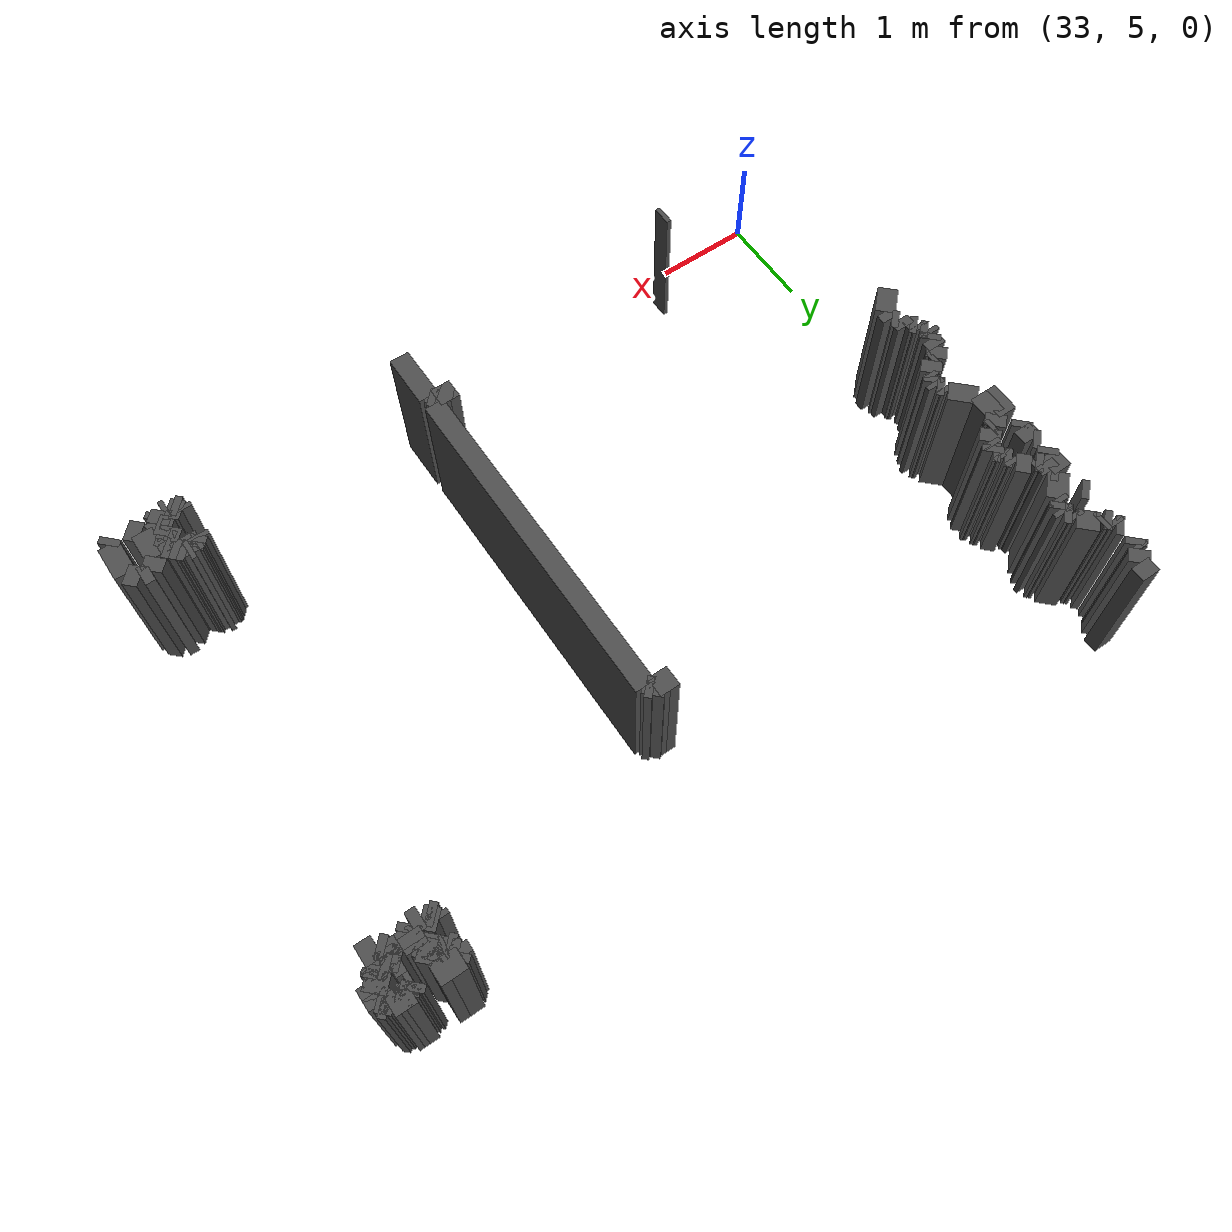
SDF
<sdf version="1.9">
 <model name="generated_walls">
  <static>true</static>
  <link name="wall_146_0">
   <pose>40.300 10.125 0.75 0 0 1.571</pose>
   <collision name="collision"><geometry><box><size>0.150 0.2 1.5</size></box></geometry></collision>
   <visual name="visual">
    <geometry><box><size>0.150 0.2 1.5</size></box></geometry>
    <material><ambient>0.3 0.3 0.3 1</ambient></material>
   </visual>
  </link>
  <link name="wall_146_1">
   <pose>40.275 10.225 0.75 0 0 2.356</pose>
   <collision name="collision"><geometry><box><size>0.071 0.2 1.5</size></box></geometry></collision>
   <visual name="visual">
    <geometry><box><size>0.071 0.2 1.5</size></box></geometry>
    <material><ambient>0.3 0.3 0.3 1</ambient></material>
   </visual>
  </link>
  <link name="wall_146_2">
   <pose>40.300 10.250 0.75 0 0 0.000</pose>
   <collision name="collision"><geometry><box><size>0.100 0.2 1.5</size></box></geometry></collision>
   <visual name="visual">
    <geometry><box><size>0.100 0.2 1.5</size></box></geometry>
    <material><ambient>0.3 0.3 0.3 1</ambient></material>
   </visual>
  </link>
  <link name="wall_146_3">
   <pose>40.375 10.225 0.75 0 0 -0.785</pose>
   <collision name="collision"><geometry><box><size>0.071 0.2 1.5</size></box></geometry></collision>
   <visual name="visual">
    <geometry><box><size>0.071 0.2 1.5</size></box></geometry>
    <material><ambient>0.3 0.3 0.3 1</ambient></material>
   </visual>
  </link>
  <link name="wall_146_4">
   <pose>40.475 10.275 0.75 0 0 0.785</pose>
   <collision name="collision"><geometry><box><size>0.212 0.2 1.5</size></box></geometry></collision>
   <visual name="visual">
    <geometry><box><size>0.212 0.2 1.5</size></box></geometry>
    <material><ambient>0.3 0.3 0.3 1</ambient></material>
   </visual>
  </link>
  <link name="wall_146_5">
   <pose>40.550 10.375 0.75 0 0 1.571</pose>
   <collision name="collision"><geometry><box><size>0.050 0.2 1.5</size></box></geometry></collision>
   <visual name="visual">
    <geometry><box><size>0.050 0.2 1.5</size></box></geometry>
    <material><ambient>0.3 0.3 0.3 1</ambient></material>
   </visual>
  </link>
  <link name="wall_146_6">
   <pose>40.500 10.450 0.75 0 0 2.356</pose>
   <collision name="collision"><geometry><box><size>0.141 0.2 1.5</size></box></geometry></collision>
   <visual name="visual">
    <geometry><box><size>0.141 0.2 1.5</size></box></geometry>
    <material><ambient>0.3 0.3 0.3 1</ambient></material>
   </visual>
  </link>
  <link name="wall_146_7">
   <pose>40.400 10.500 0.75 0 0 3.142</pose>
   <collision name="collision"><geometry><box><size>0.100 0.2 1.5</size></box></geometry></collision>
   <visual name="visual">
    <geometry><box><size>0.100 0.2 1.5</size></box></geometry>
    <material><ambient>0.3 0.3 0.3 1</ambient></material>
   </visual>
  </link>
  <link name="wall_146_8">
   <pose>40.325 10.475 0.75 0 0 -2.356</pose>
   <collision name="collision"><geometry><box><size>0.071 0.2 1.5</size></box></geometry></collision>
   <visual name="visual">
    <geometry><box><size>0.071 0.2 1.5</size></box></geometry>
    <material><ambient>0.3 0.3 0.3 1</ambient></material>
   </visual>
  </link>
  <link name="wall_146_9">
   <pose>40.275 10.450 0.75 0 0 3.142</pose>
   <collision name="collision"><geometry><box><size>0.050 0.2 1.5</size></box></geometry></collision>
   <visual name="visual">
    <geometry><box><size>0.050 0.2 1.5</size></box></geometry>
    <material><ambient>0.3 0.3 0.3 1</ambient></material>
   </visual>
  </link>
  <link name="wall_146_10">
   <pose>40.275 10.475 0.75 0 0 0.785</pose>
   <collision name="collision"><geometry><box><size>0.071 0.2 1.5</size></box></geometry></collision>
   <visual name="visual">
    <geometry><box><size>0.071 0.2 1.5</size></box></geometry>
    <material><ambient>0.3 0.3 0.3 1</ambient></material>
   </visual>
  </link>
  <link name="wall_146_11">
   <pose>40.400 10.500 0.75 0 0 0.000</pose>
   <collision name="collision"><geometry><box><size>0.200 0.2 1.5</size></box></geometry></collision>
   <visual name="visual">
    <geometry><box><size>0.200 0.2 1.5</size></box></geometry>
    <material><ambient>0.3 0.3 0.3 1</ambient></material>
   </visual>
  </link>
  <link name="wall_146_12">
   <pose>40.525 10.475 0.75 0 0 -0.785</pose>
   <collision name="collision"><geometry><box><size>0.071 0.2 1.5</size></box></geometry></collision>
   <visual name="visual">
    <geometry><box><size>0.071 0.2 1.5</size></box></geometry>
    <material><ambient>0.3 0.3 0.3 1</ambient></material>
   </visual>
  </link>
  <link name="wall_146_13">
   <pose>40.550 10.350 0.75 0 0 -1.571</pose>
   <collision name="collision"><geometry><box><size>0.200 0.2 1.5</size></box></geometry></collision>
   <visual name="visual">
    <geometry><box><size>0.200 0.2 1.5</size></box></geometry>
    <material><ambient>0.3 0.3 0.3 1</ambient></material>
   </visual>
  </link>
  <link name="wall_146_14">
   <pose>40.525 10.250 0.75 0 0 3.142</pose>
   <collision name="collision"><geometry><box><size>0.050 0.2 1.5</size></box></geometry></collision>
   <visual name="visual">
    <geometry><box><size>0.050 0.2 1.5</size></box></geometry>
    <material><ambient>0.3 0.3 0.3 1</ambient></material>
   </visual>
  </link>
  <link name="wall_146_15">
   <pose>40.475 10.225 0.75 0 0 -2.356</pose>
   <collision name="collision"><geometry><box><size>0.071 0.2 1.5</size></box></geometry></collision>
   <visual name="visual">
    <geometry><box><size>0.071 0.2 1.5</size></box></geometry>
    <material><ambient>0.3 0.3 0.3 1</ambient></material>
   </visual>
  </link>
  <link name="wall_146_16">
   <pose>40.400 10.200 0.75 0 0 3.142</pose>
   <collision name="collision"><geometry><box><size>0.100 0.2 1.5</size></box></geometry></collision>
   <visual name="visual">
    <geometry><box><size>0.100 0.2 1.5</size></box></geometry>
    <material><ambient>0.3 0.3 0.3 1</ambient></material>
   </visual>
  </link>
  <link name="wall_146_17">
   <pose>40.325 10.175 0.75 0 0 -2.356</pose>
   <collision name="collision"><geometry><box><size>0.071 0.2 1.5</size></box></geometry></collision>
   <visual name="visual">
    <geometry><box><size>0.071 0.2 1.5</size></box></geometry>
    <material><ambient>0.3 0.3 0.3 1</ambient></material>
   </visual>
  </link>
  <link name="wall_146_18">
   <pose>40.300 10.125 0.75 0 0 -1.571</pose>
   <collision name="collision"><geometry><box><size>0.050 0.2 1.5</size></box></geometry></collision>
   <visual name="visual">
    <geometry><box><size>0.050 0.2 1.5</size></box></geometry>
    <material><ambient>0.3 0.3 0.3 1</ambient></material>
   </visual>
  </link>
  <link name="wall_146_19">
   <pose>40.325 10.075 0.75 0 0 -0.785</pose>
   <collision name="collision"><geometry><box><size>0.071 0.2 1.5</size></box></geometry></collision>
   <visual name="visual">
    <geometry><box><size>0.071 0.2 1.5</size></box></geometry>
    <material><ambient>0.3 0.3 0.3 1</ambient></material>
   </visual>
  </link>
  <link name="wall_146_20">
   <pose>40.425 10.050 0.75 0 0 0.000</pose>
   <collision name="collision"><geometry><box><size>0.150 0.2 1.5</size></box></geometry></collision>
   <visual name="visual">
    <geometry><box><size>0.150 0.2 1.5</size></box></geometry>
    <material><ambient>0.3 0.3 0.3 1</ambient></material>
   </visual>
  </link>
  <link name="wall_147_0">
   <pose>39.875 10.075 0.75 0 0 2.356</pose>
   <collision name="collision"><geometry><box><size>0.071 0.2 1.5</size></box></geometry></collision>
   <visual name="visual">
    <geometry><box><size>0.071 0.2 1.5</size></box></geometry>
    <material><ambient>0.3 0.3 0.3 1</ambient></material>
   </visual>
  </link>
  <link name="wall_147_1">
   <pose>39.850 10.125 0.75 0 0 1.571</pose>
   <collision name="collision"><geometry><box><size>0.050 0.2 1.5</size></box></geometry></collision>
   <visual name="visual">
    <geometry><box><size>0.050 0.2 1.5</size></box></geometry>
    <material><ambient>0.3 0.3 0.3 1</ambient></material>
   </visual>
  </link>
  <link name="wall_147_2">
   <pose>39.900 10.100 0.75 0 0 -0.785</pose>
   <collision name="collision"><geometry><box><size>0.141 0.2 1.5</size></box></geometry></collision>
   <visual name="visual">
    <geometry><box><size>0.141 0.2 1.5</size></box></geometry>
    <material><ambient>0.3 0.3 0.3 1</ambient></material>
   </visual>
  </link>
  <link name="wall_147_3">
   <pose>40.000 10.050 0.75 0 0 0.000</pose>
   <collision name="collision"><geometry><box><size>0.100 0.2 1.5</size></box></geometry></collision>
   <visual name="visual">
    <geometry><box><size>0.100 0.2 1.5</size></box></geometry>
    <material><ambient>0.3 0.3 0.3 1</ambient></material>
   </visual>
  </link>
  <link name="wall_147_4">
   <pose>40.075 10.075 0.75 0 0 0.785</pose>
   <collision name="collision"><geometry><box><size>0.071 0.2 1.5</size></box></geometry></collision>
   <visual name="visual">
    <geometry><box><size>0.071 0.2 1.5</size></box></geometry>
    <material><ambient>0.3 0.3 0.3 1</ambient></material>
   </visual>
  </link>
  <link name="wall_147_5">
   <pose>40.100 10.150 0.75 0 0 1.571</pose>
   <collision name="collision"><geometry><box><size>0.100 0.2 1.5</size></box></geometry></collision>
   <visual name="visual">
    <geometry><box><size>0.100 0.2 1.5</size></box></geometry>
    <material><ambient>0.3 0.3 0.3 1</ambient></material>
   </visual>
  </link>
  <link name="wall_147_6">
   <pose>40.025 10.275 0.75 0 0 2.356</pose>
   <collision name="collision"><geometry><box><size>0.212 0.2 1.5</size></box></geometry></collision>
   <visual name="visual">
    <geometry><box><size>0.212 0.2 1.5</size></box></geometry>
    <material><ambient>0.3 0.3 0.3 1</ambient></material>
   </visual>
  </link>
  <link name="wall_147_7">
   <pose>39.925 10.350 0.75 0 0 3.142</pose>
   <collision name="collision"><geometry><box><size>0.050 0.2 1.5</size></box></geometry></collision>
   <visual name="visual">
    <geometry><box><size>0.050 0.2 1.5</size></box></geometry>
    <material><ambient>0.3 0.3 0.3 1</ambient></material>
   </visual>
  </link>
  <link name="wall_147_8">
   <pose>39.875 10.375 0.75 0 0 2.356</pose>
   <collision name="collision"><geometry><box><size>0.071 0.2 1.5</size></box></geometry></collision>
   <visual name="visual">
    <geometry><box><size>0.071 0.2 1.5</size></box></geometry>
    <material><ambient>0.3 0.3 0.3 1</ambient></material>
   </visual>
  </link>
  <link name="wall_147_9">
   <pose>39.850 10.450 0.75 0 0 1.571</pose>
   <collision name="collision"><geometry><box><size>0.100 0.2 1.5</size></box></geometry></collision>
   <visual name="visual">
    <geometry><box><size>0.100 0.2 1.5</size></box></geometry>
    <material><ambient>0.3 0.3 0.3 1</ambient></material>
   </visual>
  </link>
  <link name="wall_147_10">
   <pose>39.975 10.500 0.75 0 0 0.000</pose>
   <collision name="collision"><geometry><box><size>0.250 0.2 1.5</size></box></geometry></collision>
   <visual name="visual">
    <geometry><box><size>0.250 0.2 1.5</size></box></geometry>
    <material><ambient>0.3 0.3 0.3 1</ambient></material>
   </visual>
  </link>
  <link name="wall_147_11">
   <pose>40.000 10.500 0.75 0 0 3.142</pose>
   <collision name="collision"><geometry><box><size>0.200 0.2 1.5</size></box></geometry></collision>
   <visual name="visual">
    <geometry><box><size>0.200 0.2 1.5</size></box></geometry>
    <material><ambient>0.3 0.3 0.3 1</ambient></material>
   </visual>
  </link>
  <link name="wall_147_12">
   <pose>39.875 10.475 0.75 0 0 -2.356</pose>
   <collision name="collision"><geometry><box><size>0.071 0.2 1.5</size></box></geometry></collision>
   <visual name="visual">
    <geometry><box><size>0.071 0.2 1.5</size></box></geometry>
    <material><ambient>0.3 0.3 0.3 1</ambient></material>
   </visual>
  </link>
  <link name="wall_147_13">
   <pose>39.900 10.400 0.75 0 0 -0.785</pose>
   <collision name="collision"><geometry><box><size>0.141 0.2 1.5</size></box></geometry></collision>
   <visual name="visual">
    <geometry><box><size>0.141 0.2 1.5</size></box></geometry>
    <material><ambient>0.3 0.3 0.3 1</ambient></material>
   </visual>
  </link>
  <link name="wall_147_14">
   <pose>39.975 10.350 0.75 0 0 0.000</pose>
   <collision name="collision"><geometry><box><size>0.050 0.2 1.5</size></box></geometry></collision>
   <visual name="visual">
    <geometry><box><size>0.050 0.2 1.5</size></box></geometry>
    <material><ambient>0.3 0.3 0.3 1</ambient></material>
   </visual>
  </link>
  <link name="wall_147_15">
   <pose>40.050 10.300 0.75 0 0 -0.785</pose>
   <collision name="collision"><geometry><box><size>0.141 0.2 1.5</size></box></geometry></collision>
   <visual name="visual">
    <geometry><box><size>0.141 0.2 1.5</size></box></geometry>
    <material><ambient>0.3 0.3 0.3 1</ambient></material>
   </visual>
  </link>
  <link name="wall_147_16">
   <pose>40.100 10.150 0.75 0 0 -1.571</pose>
   <collision name="collision"><geometry><box><size>0.200 0.2 1.5</size></box></geometry></collision>
   <visual name="visual">
    <geometry><box><size>0.200 0.2 1.5</size></box></geometry>
    <material><ambient>0.3 0.3 0.3 1</ambient></material>
   </visual>
  </link>
  <link name="wall_152_0">
   <pose>40.300 5.650 0.75 0 0 2.356</pose>
   <collision name="collision"><geometry><box><size>0.141 0.2 1.5</size></box></geometry></collision>
   <visual name="visual">
    <geometry><box><size>0.141 0.2 1.5</size></box></geometry>
    <material><ambient>0.3 0.3 0.3 1</ambient></material>
   </visual>
  </link>
  <link name="wall_152_1">
   <pose>40.250 5.850 0.75 0 0 1.571</pose>
   <collision name="collision"><geometry><box><size>0.300 0.2 1.5</size></box></geometry></collision>
   <visual name="visual">
    <geometry><box><size>0.300 0.2 1.5</size></box></geometry>
    <material><ambient>0.3 0.3 0.3 1</ambient></material>
   </visual>
  </link>
  <link name="wall_152_2">
   <pose>40.300 6.050 0.75 0 0 0.785</pose>
   <collision name="collision"><geometry><box><size>0.141 0.2 1.5</size></box></geometry></collision>
   <visual name="visual">
    <geometry><box><size>0.141 0.2 1.5</size></box></geometry>
    <material><ambient>0.3 0.3 0.3 1</ambient></material>
   </visual>
  </link>
  <link name="wall_152_3">
   <pose>40.400 6.100 0.75 0 0 0.000</pose>
   <collision name="collision"><geometry><box><size>0.100 0.2 1.5</size></box></geometry></collision>
   <visual name="visual">
    <geometry><box><size>0.100 0.2 1.5</size></box></geometry>
    <material><ambient>0.3 0.3 0.3 1</ambient></material>
   </visual>
  </link>
  <link name="wall_152_4">
   <pose>40.500 6.050 0.75 0 0 -0.785</pose>
   <collision name="collision"><geometry><box><size>0.141 0.2 1.5</size></box></geometry></collision>
   <visual name="visual">
    <geometry><box><size>0.141 0.2 1.5</size></box></geometry>
    <material><ambient>0.3 0.3 0.3 1</ambient></material>
   </visual>
  </link>
  <link name="wall_152_5">
   <pose>40.550 5.825 0.75 0 0 -1.571</pose>
   <collision name="collision"><geometry><box><size>0.350 0.2 1.5</size></box></geometry></collision>
   <visual name="visual">
    <geometry><box><size>0.350 0.2 1.5</size></box></geometry>
    <material><ambient>0.3 0.3 0.3 1</ambient></material>
   </visual>
  </link>
  <link name="wall_152_6">
   <pose>40.525 5.625 0.75 0 0 -2.356</pose>
   <collision name="collision"><geometry><box><size>0.071 0.2 1.5</size></box></geometry></collision>
   <visual name="visual">
    <geometry><box><size>0.071 0.2 1.5</size></box></geometry>
    <material><ambient>0.3 0.3 0.3 1</ambient></material>
   </visual>
  </link>
  <link name="wall_153_0">
   <pose>39.875 5.625 0.75 0 0 2.356</pose>
   <collision name="collision"><geometry><box><size>0.071 0.2 1.5</size></box></geometry></collision>
   <visual name="visual">
    <geometry><box><size>0.071 0.2 1.5</size></box></geometry>
    <material><ambient>0.3 0.3 0.3 1</ambient></material>
   </visual>
  </link>
  <link name="wall_153_1">
   <pose>39.850 5.675 0.75 0 0 1.571</pose>
   <collision name="collision"><geometry><box><size>0.050 0.2 1.5</size></box></geometry></collision>
   <visual name="visual">
    <geometry><box><size>0.050 0.2 1.5</size></box></geometry>
    <material><ambient>0.3 0.3 0.3 1</ambient></material>
   </visual>
  </link>
  <link name="wall_153_2">
   <pose>39.900 5.650 0.75 0 0 -0.785</pose>
   <collision name="collision"><geometry><box><size>0.141 0.2 1.5</size></box></geometry></collision>
   <visual name="visual">
    <geometry><box><size>0.141 0.2 1.5</size></box></geometry>
    <material><ambient>0.3 0.3 0.3 1</ambient></material>
   </visual>
  </link>
  <link name="wall_153_3">
   <pose>39.975 5.600 0.75 0 0 0.000</pose>
   <collision name="collision"><geometry><box><size>0.050 0.2 1.5</size></box></geometry></collision>
   <visual name="visual">
    <geometry><box><size>0.050 0.2 1.5</size></box></geometry>
    <material><ambient>0.3 0.3 0.3 1</ambient></material>
   </visual>
  </link>
  <link name="wall_153_4">
   <pose>40.050 5.650 0.75 0 0 0.785</pose>
   <collision name="collision"><geometry><box><size>0.141 0.2 1.5</size></box></geometry></collision>
   <visual name="visual">
    <geometry><box><size>0.141 0.2 1.5</size></box></geometry>
    <material><ambient>0.3 0.3 0.3 1</ambient></material>
   </visual>
  </link>
  <link name="wall_153_5">
   <pose>40.050 5.750 0.75 0 0 2.356</pose>
   <collision name="collision"><geometry><box><size>0.141 0.2 1.5</size></box></geometry></collision>
   <visual name="visual">
    <geometry><box><size>0.141 0.2 1.5</size></box></geometry>
    <material><ambient>0.3 0.3 0.3 1</ambient></material>
   </visual>
  </link>
  <link name="wall_153_6">
   <pose>40.050 5.850 0.75 0 0 0.785</pose>
   <collision name="collision"><geometry><box><size>0.141 0.2 1.5</size></box></geometry></collision>
   <visual name="visual">
    <geometry><box><size>0.141 0.2 1.5</size></box></geometry>
    <material><ambient>0.3 0.3 0.3 1</ambient></material>
   </visual>
  </link>
  <link name="wall_153_7">
   <pose>40.100 5.950 0.75 0 0 1.571</pose>
   <collision name="collision"><geometry><box><size>0.100 0.2 1.5</size></box></geometry></collision>
   <visual name="visual">
    <geometry><box><size>0.100 0.2 1.5</size></box></geometry>
    <material><ambient>0.3 0.3 0.3 1</ambient></material>
   </visual>
  </link>
  <link name="wall_153_8">
   <pose>40.075 6.025 0.75 0 0 2.356</pose>
   <collision name="collision"><geometry><box><size>0.071 0.2 1.5</size></box></geometry></collision>
   <visual name="visual">
    <geometry><box><size>0.071 0.2 1.5</size></box></geometry>
    <material><ambient>0.3 0.3 0.3 1</ambient></material>
   </visual>
  </link>
  <link name="wall_153_9">
   <pose>39.975 6.050 0.75 0 0 3.142</pose>
   <collision name="collision"><geometry><box><size>0.150 0.2 1.5</size></box></geometry></collision>
   <visual name="visual">
    <geometry><box><size>0.150 0.2 1.5</size></box></geometry>
    <material><ambient>0.3 0.3 0.3 1</ambient></material>
   </visual>
  </link>
  <link name="wall_153_10">
   <pose>39.875 6.025 0.75 0 0 -2.356</pose>
   <collision name="collision"><geometry><box><size>0.071 0.2 1.5</size></box></geometry></collision>
   <visual name="visual">
    <geometry><box><size>0.071 0.2 1.5</size></box></geometry>
    <material><ambient>0.3 0.3 0.3 1</ambient></material>
   </visual>
  </link>
  <link name="wall_153_11">
   <pose>39.850 6.025 0.75 0 0 1.571</pose>
   <collision name="collision"><geometry><box><size>0.050 0.2 1.5</size></box></geometry></collision>
   <visual name="visual">
    <geometry><box><size>0.050 0.2 1.5</size></box></geometry>
    <material><ambient>0.3 0.3 0.3 1</ambient></material>
   </visual>
  </link>
  <link name="wall_153_12">
   <pose>39.875 6.050 0.75 0 0 0.000</pose>
   <collision name="collision"><geometry><box><size>0.050 0.2 1.5</size></box></geometry></collision>
   <visual name="visual">
    <geometry><box><size>0.050 0.2 1.5</size></box></geometry>
    <material><ambient>0.3 0.3 0.3 1</ambient></material>
   </visual>
  </link>
  <link name="wall_153_13">
   <pose>39.925 6.075 0.75 0 0 0.785</pose>
   <collision name="collision"><geometry><box><size>0.071 0.2 1.5</size></box></geometry></collision>
   <visual name="visual">
    <geometry><box><size>0.071 0.2 1.5</size></box></geometry>
    <material><ambient>0.3 0.3 0.3 1</ambient></material>
   </visual>
  </link>
  <link name="wall_153_14">
   <pose>39.975 6.100 0.75 0 0 0.000</pose>
   <collision name="collision"><geometry><box><size>0.050 0.2 1.5</size></box></geometry></collision>
   <visual name="visual">
    <geometry><box><size>0.050 0.2 1.5</size></box></geometry>
    <material><ambient>0.3 0.3 0.3 1</ambient></material>
   </visual>
  </link>
  <link name="wall_153_15">
   <pose>40.025 6.075 0.75 0 0 -0.785</pose>
   <collision name="collision"><geometry><box><size>0.071 0.2 1.5</size></box></geometry></collision>
   <visual name="visual">
    <geometry><box><size>0.071 0.2 1.5</size></box></geometry>
    <material><ambient>0.3 0.3 0.3 1</ambient></material>
   </visual>
  </link>
  <link name="wall_153_16">
   <pose>40.075 6.050 0.75 0 0 0.000</pose>
   <collision name="collision"><geometry><box><size>0.050 0.2 1.5</size></box></geometry></collision>
   <visual name="visual">
    <geometry><box><size>0.050 0.2 1.5</size></box></geometry>
    <material><ambient>0.3 0.3 0.3 1</ambient></material>
   </visual>
  </link>
  <link name="wall_153_17">
   <pose>40.100 6.025 0.75 0 0 -1.571</pose>
   <collision name="collision"><geometry><box><size>0.050 0.2 1.5</size></box></geometry></collision>
   <visual name="visual">
    <geometry><box><size>0.050 0.2 1.5</size></box></geometry>
    <material><ambient>0.3 0.3 0.3 1</ambient></material>
   </visual>
  </link>
  <link name="wall_153_18">
   <pose>40.125 5.975 0.75 0 0 -0.785</pose>
   <collision name="collision"><geometry><box><size>0.071 0.2 1.5</size></box></geometry></collision>
   <visual name="visual">
    <geometry><box><size>0.071 0.2 1.5</size></box></geometry>
    <material><ambient>0.3 0.3 0.3 1</ambient></material>
   </visual>
  </link>
  <link name="wall_153_19">
   <pose>40.125 5.925 0.75 0 0 -2.356</pose>
   <collision name="collision"><geometry><box><size>0.071 0.2 1.5</size></box></geometry></collision>
   <visual name="visual">
    <geometry><box><size>0.071 0.2 1.5</size></box></geometry>
    <material><ambient>0.3 0.3 0.3 1</ambient></material>
   </visual>
  </link>
  <link name="wall_153_20">
   <pose>40.100 5.875 0.75 0 0 -1.571</pose>
   <collision name="collision"><geometry><box><size>0.050 0.2 1.5</size></box></geometry></collision>
   <visual name="visual">
    <geometry><box><size>0.050 0.2 1.5</size></box></geometry>
    <material><ambient>0.3 0.3 0.3 1</ambient></material>
   </visual>
  </link>
  <link name="wall_153_21">
   <pose>40.075 5.825 0.75 0 0 -2.356</pose>
   <collision name="collision"><geometry><box><size>0.071 0.2 1.5</size></box></geometry></collision>
   <visual name="visual">
    <geometry><box><size>0.071 0.2 1.5</size></box></geometry>
    <material><ambient>0.3 0.3 0.3 1</ambient></material>
   </visual>
  </link>
  <link name="wall_153_22">
   <pose>40.075 5.775 0.75 0 0 -0.785</pose>
   <collision name="collision"><geometry><box><size>0.071 0.2 1.5</size></box></geometry></collision>
   <visual name="visual">
    <geometry><box><size>0.071 0.2 1.5</size></box></geometry>
    <material><ambient>0.3 0.3 0.3 1</ambient></material>
   </visual>
  </link>
  <link name="wall_153_23">
   <pose>40.100 5.700 0.75 0 0 -1.571</pose>
   <collision name="collision"><geometry><box><size>0.100 0.2 1.5</size></box></geometry></collision>
   <visual name="visual">
    <geometry><box><size>0.100 0.2 1.5</size></box></geometry>
    <material><ambient>0.3 0.3 0.3 1</ambient></material>
   </visual>
  </link>
  <link name="wall_153_24">
   <pose>40.075 5.625 0.75 0 0 -2.356</pose>
   <collision name="collision"><geometry><box><size>0.071 0.2 1.5</size></box></geometry></collision>
   <visual name="visual">
    <geometry><box><size>0.071 0.2 1.5</size></box></geometry>
    <material><ambient>0.3 0.3 0.3 1</ambient></material>
   </visual>
  </link>
  <link name="wall_155_0">
   <pose>37.400 5.625 0.75 0 0 1.571</pose>
   <collision name="collision"><geometry><box><size>0.550 0.2 1.5</size></box></geometry></collision>
   <visual name="visual">
    <geometry><box><size>0.550 0.2 1.5</size></box></geometry>
    <material><ambient>0.3 0.3 0.3 1</ambient></material>
   </visual>
  </link>
  <link name="wall_155_1">
   <pose>37.375 5.925 0.75 0 0 2.356</pose>
   <collision name="collision"><geometry><box><size>0.071 0.2 1.5</size></box></geometry></collision>
   <visual name="visual">
    <geometry><box><size>0.071 0.2 1.5</size></box></geometry>
    <material><ambient>0.3 0.3 0.3 1</ambient></material>
   </visual>
  </link>
  <link name="wall_155_2">
   <pose>37.250 5.950 0.75 0 0 3.142</pose>
   <collision name="collision"><geometry><box><size>0.200 0.2 1.5</size></box></geometry></collision>
   <visual name="visual">
    <geometry><box><size>0.200 0.2 1.5</size></box></geometry>
    <material><ambient>0.3 0.3 0.3 1</ambient></material>
   </visual>
  </link>
  <link name="wall_155_3">
   <pose>37.250 5.950 0.75 0 0 0.000</pose>
   <collision name="collision"><geometry><box><size>0.200 0.2 1.5</size></box></geometry></collision>
   <visual name="visual">
    <geometry><box><size>0.200 0.2 1.5</size></box></geometry>
    <material><ambient>0.3 0.3 0.3 1</ambient></material>
   </visual>
  </link>
  <link name="wall_155_4">
   <pose>37.375 5.975 0.75 0 0 0.785</pose>
   <collision name="collision"><geometry><box><size>0.071 0.2 1.5</size></box></geometry></collision>
   <visual name="visual">
    <geometry><box><size>0.071 0.2 1.5</size></box></geometry>
    <material><ambient>0.3 0.3 0.3 1</ambient></material>
   </visual>
  </link>
  <link name="wall_155_5">
   <pose>37.400 7.725 0.75 0 0 1.571</pose>
   <collision name="collision"><geometry><box><size>3.450 0.2 1.5</size></box></geometry></collision>
   <visual name="visual">
    <geometry><box><size>3.450 0.2 1.5</size></box></geometry>
    <material><ambient>0.3 0.3 0.3 1</ambient></material>
   </visual>
  </link>
  <link name="wall_155_6">
   <pose>37.375 9.475 0.75 0 0 2.356</pose>
   <collision name="collision"><geometry><box><size>0.071 0.2 1.5</size></box></geometry></collision>
   <visual name="visual">
    <geometry><box><size>0.071 0.2 1.5</size></box></geometry>
    <material><ambient>0.3 0.3 0.3 1</ambient></material>
   </visual>
  </link>
  <link name="wall_155_7">
   <pose>37.250 9.500 0.75 0 0 3.142</pose>
   <collision name="collision"><geometry><box><size>0.200 0.2 1.5</size></box></geometry></collision>
   <visual name="visual">
    <geometry><box><size>0.200 0.2 1.5</size></box></geometry>
    <material><ambient>0.3 0.3 0.3 1</ambient></material>
   </visual>
  </link>
  <link name="wall_155_8">
   <pose>37.250 9.500 0.75 0 0 0.000</pose>
   <collision name="collision"><geometry><box><size>0.200 0.2 1.5</size></box></geometry></collision>
   <visual name="visual">
    <geometry><box><size>0.200 0.2 1.5</size></box></geometry>
    <material><ambient>0.3 0.3 0.3 1</ambient></material>
   </visual>
  </link>
  <link name="wall_155_9">
   <pose>37.375 9.525 0.75 0 0 0.785</pose>
   <collision name="collision"><geometry><box><size>0.071 0.2 1.5</size></box></geometry></collision>
   <visual name="visual">
    <geometry><box><size>0.071 0.2 1.5</size></box></geometry>
    <material><ambient>0.3 0.3 0.3 1</ambient></material>
   </visual>
  </link>
  <link name="wall_156_0">
   <pose>34.325 5.350 0.75 0 0 0.000</pose>
   <collision name="collision"><geometry><box><size>0.050 0.2 1.5</size></box></geometry></collision>
   <visual name="visual">
    <geometry><box><size>0.050 0.2 1.5</size></box></geometry>
    <material><ambient>0.3 0.3 0.3 1</ambient></material>
   </visual>
  </link>
  <link name="wall_161_1413">
   <pose>33.050 8.950 0.75 0 0 1.571</pose>
   <collision name="collision"><geometry><box><size>0.300 0.2 1.5</size></box></geometry></collision>
   <visual name="visual">
    <geometry><box><size>0.300 0.2 1.5</size></box></geometry>
    <material><ambient>0.3 0.3 0.3 1</ambient></material>
   </visual>
  </link>
  <link name="wall_161_1418">
   <pose>33.025 9.275 0.75 0 0 0.785</pose>
   <collision name="collision"><geometry><box><size>0.071 0.2 1.5</size></box></geometry></collision>
   <visual name="visual">
    <geometry><box><size>0.071 0.2 1.5</size></box></geometry>
    <material><ambient>0.3 0.3 0.3 1</ambient></material>
   </visual>
  </link>
  <link name="wall_161_1419">
   <pose>33.050 9.375 0.75 0 0 1.571</pose>
   <collision name="collision"><geometry><box><size>0.150 0.2 1.5</size></box></geometry></collision>
   <visual name="visual">
    <geometry><box><size>0.150 0.2 1.5</size></box></geometry>
    <material><ambient>0.3 0.3 0.3 1</ambient></material>
   </visual>
  </link>
  <link name="wall_161_1420">
   <pose>33.025 9.475 0.75 0 0 2.356</pose>
   <collision name="collision"><geometry><box><size>0.071 0.2 1.5</size></box></geometry></collision>
   <visual name="visual">
    <geometry><box><size>0.071 0.2 1.5</size></box></geometry>
    <material><ambient>0.3 0.3 0.3 1</ambient></material>
   </visual>
  </link>
  <link name="wall_161_1424">
   <pose>33.025 9.625 0.75 0 0 0.785</pose>
   <collision name="collision"><geometry><box><size>0.071 0.2 1.5</size></box></geometry></collision>
   <visual name="visual">
    <geometry><box><size>0.071 0.2 1.5</size></box></geometry>
    <material><ambient>0.3 0.3 0.3 1</ambient></material>
   </visual>
  </link>
  <link name="wall_161_1425">
   <pose>33.050 9.750 0.75 0 0 1.571</pose>
   <collision name="collision"><geometry><box><size>0.200 0.2 1.5</size></box></geometry></collision>
   <visual name="visual">
    <geometry><box><size>0.200 0.2 1.5</size></box></geometry>
    <material><ambient>0.3 0.3 0.3 1</ambient></material>
   </visual>
  </link>
  <link name="wall_161_1429">
   <pose>33.025 10.125 0.75 0 0 2.356</pose>
   <collision name="collision"><geometry><box><size>0.071 0.2 1.5</size></box></geometry></collision>
   <visual name="visual">
    <geometry><box><size>0.071 0.2 1.5</size></box></geometry>
    <material><ambient>0.3 0.3 0.3 1</ambient></material>
   </visual>
  </link>
  <link name="wall_161_2728">
   <pose>33.150 11.025 0.75 0 0 -1.571</pose>
   <collision name="collision"><geometry><box><size>0.150 0.2 1.5</size></box></geometry></collision>
   <visual name="visual">
    <geometry><box><size>0.150 0.2 1.5</size></box></geometry>
    <material><ambient>0.3 0.3 0.3 1</ambient></material>
   </visual>
  </link>
  <link name="wall_161_2729">
   <pose>33.100 10.900 0.75 0 0 -2.356</pose>
   <collision name="collision"><geometry><box><size>0.141 0.2 1.5</size></box></geometry></collision>
   <visual name="visual">
    <geometry><box><size>0.141 0.2 1.5</size></box></geometry>
    <material><ambient>0.3 0.3 0.3 1</ambient></material>
   </visual>
  </link>
  <link name="wall_161_2730">
   <pose>33.050 10.825 0.75 0 0 -1.571</pose>
   <collision name="collision"><geometry><box><size>0.050 0.2 1.5</size></box></geometry></collision>
   <visual name="visual">
    <geometry><box><size>0.050 0.2 1.5</size></box></geometry>
    <material><ambient>0.3 0.3 0.3 1</ambient></material>
   </visual>
  </link>
  <link name="wall_161_2731">
   <pose>33.025 10.775 0.75 0 0 -2.356</pose>
   <collision name="collision"><geometry><box><size>0.071 0.2 1.5</size></box></geometry></collision>
   <visual name="visual">
    <geometry><box><size>0.071 0.2 1.5</size></box></geometry>
    <material><ambient>0.3 0.3 0.3 1</ambient></material>
   </visual>
  </link>
  <link name="wall_161_2733">
   <pose>33.025 10.575 0.75 0 0 -0.785</pose>
   <collision name="collision"><geometry><box><size>0.071 0.2 1.5</size></box></geometry></collision>
   <visual name="visual">
    <geometry><box><size>0.071 0.2 1.5</size></box></geometry>
    <material><ambient>0.3 0.3 0.3 1</ambient></material>
   </visual>
  </link>
  <link name="wall_161_2734">
   <pose>33.050 10.525 0.75 0 0 -1.571</pose>
   <collision name="collision"><geometry><box><size>0.050 0.2 1.5</size></box></geometry></collision>
   <visual name="visual">
    <geometry><box><size>0.050 0.2 1.5</size></box></geometry>
    <material><ambient>0.3 0.3 0.3 1</ambient></material>
   </visual>
  </link>
  <link name="wall_161_2735">
   <pose>33.075 10.475 0.75 0 0 -0.785</pose>
   <collision name="collision"><geometry><box><size>0.071 0.2 1.5</size></box></geometry></collision>
   <visual name="visual">
    <geometry><box><size>0.071 0.2 1.5</size></box></geometry>
    <material><ambient>0.3 0.3 0.3 1</ambient></material>
   </visual>
  </link>
  <link name="wall_161_2736">
   <pose>33.125 10.450 0.75 0 0 0.000</pose>
   <collision name="collision"><geometry><box><size>0.050 0.2 1.5</size></box></geometry></collision>
   <visual name="visual">
    <geometry><box><size>0.050 0.2 1.5</size></box></geometry>
    <material><ambient>0.3 0.3 0.3 1</ambient></material>
   </visual>
  </link>
  <link name="wall_161_2737">
   <pose>33.225 10.375 0.75 0 0 -0.785</pose>
   <collision name="collision"><geometry><box><size>0.212 0.2 1.5</size></box></geometry></collision>
   <visual name="visual">
    <geometry><box><size>0.212 0.2 1.5</size></box></geometry>
    <material><ambient>0.3 0.3 0.3 1</ambient></material>
   </visual>
  </link>
  <link name="wall_161_2738">
   <pose>33.300 10.275 0.75 0 0 -1.571</pose>
   <collision name="collision"><geometry><box><size>0.050 0.2 1.5</size></box></geometry></collision>
   <visual name="visual">
    <geometry><box><size>0.050 0.2 1.5</size></box></geometry>
    <material><ambient>0.3 0.3 0.3 1</ambient></material>
   </visual>
  </link>
  <link name="wall_161_2739">
   <pose>33.325 10.225 0.75 0 0 -0.785</pose>
   <collision name="collision"><geometry><box><size>0.071 0.2 1.5</size></box></geometry></collision>
   <visual name="visual">
    <geometry><box><size>0.071 0.2 1.5</size></box></geometry>
    <material><ambient>0.3 0.3 0.3 1</ambient></material>
   </visual>
  </link>
  <link name="wall_161_2740">
   <pose>33.350 10.175 0.75 0 0 -1.571</pose>
   <collision name="collision"><geometry><box><size>0.050 0.2 1.5</size></box></geometry></collision>
   <visual name="visual">
    <geometry><box><size>0.050 0.2 1.5</size></box></geometry>
    <material><ambient>0.3 0.3 0.3 1</ambient></material>
   </visual>
  </link>
  <link name="wall_161_2741">
   <pose>33.325 10.125 0.75 0 0 -2.356</pose>
   <collision name="collision"><geometry><box><size>0.071 0.2 1.5</size></box></geometry></collision>
   <visual name="visual">
    <geometry><box><size>0.071 0.2 1.5</size></box></geometry>
    <material><ambient>0.3 0.3 0.3 1</ambient></material>
   </visual>
  </link>
  <link name="wall_161_2742">
   <pose>33.300 10.075 0.75 0 0 -1.571</pose>
   <collision name="collision"><geometry><box><size>0.050 0.2 1.5</size></box></geometry></collision>
   <visual name="visual">
    <geometry><box><size>0.050 0.2 1.5</size></box></geometry>
    <material><ambient>0.3 0.3 0.3 1</ambient></material>
   </visual>
  </link>
  <link name="wall_161_2743">
   <pose>33.200 9.950 0.75 0 0 -2.356</pose>
   <collision name="collision"><geometry><box><size>0.283 0.2 1.5</size></box></geometry></collision>
   <visual name="visual">
    <geometry><box><size>0.283 0.2 1.5</size></box></geometry>
    <material><ambient>0.3 0.3 0.3 1</ambient></material>
   </visual>
  </link>
  <link name="wall_161_2744">
   <pose>33.125 9.825 0.75 0 0 -0.785</pose>
   <collision name="collision"><geometry><box><size>0.071 0.2 1.5</size></box></geometry></collision>
   <visual name="visual">
    <geometry><box><size>0.071 0.2 1.5</size></box></geometry>
    <material><ambient>0.3 0.3 0.3 1</ambient></material>
   </visual>
  </link>
  <link name="wall_161_2745">
   <pose>33.150 9.750 0.75 0 0 -1.571</pose>
   <collision name="collision"><geometry><box><size>0.100 0.2 1.5</size></box></geometry></collision>
   <visual name="visual">
    <geometry><box><size>0.100 0.2 1.5</size></box></geometry>
    <material><ambient>0.3 0.3 0.3 1</ambient></material>
   </visual>
  </link>
  <link name="wall_161_2746">
   <pose>33.175 9.675 0.75 0 0 -0.785</pose>
   <collision name="collision"><geometry><box><size>0.071 0.2 1.5</size></box></geometry></collision>
   <visual name="visual">
    <geometry><box><size>0.071 0.2 1.5</size></box></geometry>
    <material><ambient>0.3 0.3 0.3 1</ambient></material>
   </visual>
  </link>
  <link name="wall_161_2747">
   <pose>33.225 9.650 0.75 0 0 0.000</pose>
   <collision name="collision"><geometry><box><size>0.050 0.2 1.5</size></box></geometry></collision>
   <visual name="visual">
    <geometry><box><size>0.050 0.2 1.5</size></box></geometry>
    <material><ambient>0.3 0.3 0.3 1</ambient></material>
   </visual>
  </link>
  <link name="wall_161_2748">
   <pose>33.300 9.600 0.75 0 0 -0.785</pose>
   <collision name="collision"><geometry><box><size>0.141 0.2 1.5</size></box></geometry></collision>
   <visual name="visual">
    <geometry><box><size>0.141 0.2 1.5</size></box></geometry>
    <material><ambient>0.3 0.3 0.3 1</ambient></material>
   </visual>
  </link>
  <link name="wall_161_2749">
   <pose>33.350 9.525 0.75 0 0 -1.571</pose>
   <collision name="collision"><geometry><box><size>0.050 0.2 1.5</size></box></geometry></collision>
   <visual name="visual">
    <geometry><box><size>0.050 0.2 1.5</size></box></geometry>
    <material><ambient>0.3 0.3 0.3 1</ambient></material>
   </visual>
  </link>
  <link name="wall_161_2750">
   <pose>33.375 9.475 0.75 0 0 -0.785</pose>
   <collision name="collision"><geometry><box><size>0.071 0.2 1.5</size></box></geometry></collision>
   <visual name="visual">
    <geometry><box><size>0.071 0.2 1.5</size></box></geometry>
    <material><ambient>0.3 0.3 0.3 1</ambient></material>
   </visual>
  </link>
  <link name="wall_161_2751">
   <pose>33.400 9.425 0.75 0 0 -1.571</pose>
   <collision name="collision"><geometry><box><size>0.050 0.2 1.5</size></box></geometry></collision>
   <visual name="visual">
    <geometry><box><size>0.050 0.2 1.5</size></box></geometry>
    <material><ambient>0.3 0.3 0.3 1</ambient></material>
   </visual>
  </link>
  <link name="wall_161_2752">
   <pose>33.425 9.375 0.75 0 0 -0.785</pose>
   <collision name="collision"><geometry><box><size>0.071 0.2 1.5</size></box></geometry></collision>
   <visual name="visual">
    <geometry><box><size>0.071 0.2 1.5</size></box></geometry>
    <material><ambient>0.3 0.3 0.3 1</ambient></material>
   </visual>
  </link>
  <link name="wall_161_2753">
   <pose>33.425 9.325 0.75 0 0 -2.356</pose>
   <collision name="collision"><geometry><box><size>0.071 0.2 1.5</size></box></geometry></collision>
   <visual name="visual">
    <geometry><box><size>0.071 0.2 1.5</size></box></geometry>
    <material><ambient>0.3 0.3 0.3 1</ambient></material>
   </visual>
  </link>
  <link name="wall_161_2754">
   <pose>33.400 9.275 0.75 0 0 -1.571</pose>
   <collision name="collision"><geometry><box><size>0.050 0.2 1.5</size></box></geometry></collision>
   <visual name="visual">
    <geometry><box><size>0.050 0.2 1.5</size></box></geometry>
    <material><ambient>0.3 0.3 0.3 1</ambient></material>
   </visual>
  </link>
  <link name="wall_161_2755">
   <pose>33.350 9.200 0.75 0 0 -2.356</pose>
   <collision name="collision"><geometry><box><size>0.141 0.2 1.5</size></box></geometry></collision>
   <visual name="visual">
    <geometry><box><size>0.141 0.2 1.5</size></box></geometry>
    <material><ambient>0.3 0.3 0.3 1</ambient></material>
   </visual>
  </link>
  <link name="wall_161_2756">
   <pose>33.275 9.150 0.75 0 0 3.142</pose>
   <collision name="collision"><geometry><box><size>0.050 0.2 1.5</size></box></geometry></collision>
   <visual name="visual">
    <geometry><box><size>0.050 0.2 1.5</size></box></geometry>
    <material><ambient>0.3 0.3 0.3 1</ambient></material>
   </visual>
  </link>
  <link name="wall_161_2757">
   <pose>33.200 9.100 0.75 0 0 -2.356</pose>
   <collision name="collision"><geometry><box><size>0.141 0.2 1.5</size></box></geometry></collision>
   <visual name="visual">
    <geometry><box><size>0.141 0.2 1.5</size></box></geometry>
    <material><ambient>0.3 0.3 0.3 1</ambient></material>
   </visual>
  </link>
  <link name="wall_161_2758">
   <pose>33.150 8.925 0.75 0 0 -1.571</pose>
   <collision name="collision"><geometry><box><size>0.250 0.2 1.5</size></box></geometry></collision>
   <visual name="visual">
    <geometry><box><size>0.250 0.2 1.5</size></box></geometry>
    <material><ambient>0.3 0.3 0.3 1</ambient></material>
   </visual>
  </link>
  <link name="wall_161_2759">
   <pose>33.250 8.700 0.75 0 0 -0.785</pose>
   <collision name="collision"><geometry><box><size>0.283 0.2 1.5</size></box></geometry></collision>
   <visual name="visual">
    <geometry><box><size>0.283 0.2 1.5</size></box></geometry>
    <material><ambient>0.3 0.3 0.3 1</ambient></material>
   </visual>
  </link>
  <link name="wall_161_2760">
   <pose>33.350 8.575 0.75 0 0 -1.571</pose>
   <collision name="collision"><geometry><box><size>0.050 0.2 1.5</size></box></geometry></collision>
   <visual name="visual">
    <geometry><box><size>0.050 0.2 1.5</size></box></geometry>
    <material><ambient>0.3 0.3 0.3 1</ambient></material>
   </visual>
  </link>
  <link name="wall_161_2761">
   <pose>33.375 8.525 0.75 0 0 -0.785</pose>
   <collision name="collision"><geometry><box><size>0.071 0.2 1.5</size></box></geometry></collision>
   <visual name="visual">
    <geometry><box><size>0.071 0.2 1.5</size></box></geometry>
    <material><ambient>0.3 0.3 0.3 1</ambient></material>
   </visual>
  </link>
  <link name="wall_161_2762">
   <pose>33.400 8.475 0.75 0 0 -1.571</pose>
   <collision name="collision"><geometry><box><size>0.050 0.2 1.5</size></box></geometry></collision>
   <visual name="visual">
    <geometry><box><size>0.050 0.2 1.5</size></box></geometry>
    <material><ambient>0.3 0.3 0.3 1</ambient></material>
   </visual>
  </link>
  <link name="wall_161_2763">
   <pose>33.375 8.425 0.75 0 0 -2.356</pose>
   <collision name="collision"><geometry><box><size>0.071 0.2 1.5</size></box></geometry></collision>
   <visual name="visual">
    <geometry><box><size>0.071 0.2 1.5</size></box></geometry>
    <material><ambient>0.3 0.3 0.3 1</ambient></material>
   </visual>
  </link>
  <link name="wall_161_2764">
   <pose>33.350 8.375 0.75 0 0 -1.571</pose>
   <collision name="collision"><geometry><box><size>0.050 0.2 1.5</size></box></geometry></collision>
   <visual name="visual">
    <geometry><box><size>0.050 0.2 1.5</size></box></geometry>
    <material><ambient>0.3 0.3 0.3 1</ambient></material>
   </visual>
  </link>
  <link name="wall_161_2765">
   <pose>33.300 8.300 0.75 0 0 -2.356</pose>
   <collision name="collision"><geometry><box><size>0.141 0.2 1.5</size></box></geometry></collision>
   <visual name="visual">
    <geometry><box><size>0.141 0.2 1.5</size></box></geometry>
    <material><ambient>0.3 0.3 0.3 1</ambient></material>
   </visual>
  </link>
  <link name="wall_161_2766">
   <pose>33.225 8.250 0.75 0 0 3.142</pose>
   <collision name="collision"><geometry><box><size>0.050 0.2 1.5</size></box></geometry></collision>
   <visual name="visual">
    <geometry><box><size>0.050 0.2 1.5</size></box></geometry>
    <material><ambient>0.3 0.3 0.3 1</ambient></material>
   </visual>
  </link>
  <link name="wall_161_2767">
   <pose>33.150 8.200 0.75 0 0 -2.356</pose>
   <collision name="collision"><geometry><box><size>0.141 0.2 1.5</size></box></geometry></collision>
   <visual name="visual">
    <geometry><box><size>0.141 0.2 1.5</size></box></geometry>
    <material><ambient>0.3 0.3 0.3 1</ambient></material>
   </visual>
  </link>
  <link name="wall_161_2768">
   <pose>33.100 8.100 0.75 0 0 -1.571</pose>
   <collision name="collision"><geometry><box><size>0.100 0.2 1.5</size></box></geometry></collision>
   <visual name="visual">
    <geometry><box><size>0.100 0.2 1.5</size></box></geometry>
    <material><ambient>0.3 0.3 0.3 1</ambient></material>
   </visual>
  </link>
  <link name="wall_161_2769">
   <pose>33.075 8.025 0.75 0 0 -2.356</pose>
   <collision name="collision"><geometry><box><size>0.071 0.2 1.5</size></box></geometry></collision>
   <visual name="visual">
    <geometry><box><size>0.071 0.2 1.5</size></box></geometry>
    <material><ambient>0.3 0.3 0.3 1</ambient></material>
   </visual>
  </link>
  <link name="wall_161_2770">
   <pose>33.050 7.975 0.75 0 0 -1.571</pose>
   <collision name="collision"><geometry><box><size>0.050 0.2 1.5</size></box></geometry></collision>
   <visual name="visual">
    <geometry><box><size>0.050 0.2 1.5</size></box></geometry>
    <material><ambient>0.3 0.3 0.3 1</ambient></material>
   </visual>
  </link>
  <link name="wall_161_2771">
   <pose>33.075 7.925 0.75 0 0 -0.785</pose>
   <collision name="collision"><geometry><box><size>0.071 0.2 1.5</size></box></geometry></collision>
   <visual name="visual">
    <geometry><box><size>0.071 0.2 1.5</size></box></geometry>
    <material><ambient>0.3 0.3 0.3 1</ambient></material>
   </visual>
  </link>
  <link name="wall_161_2772">
   <pose>33.100 7.875 0.75 0 0 -1.571</pose>
   <collision name="collision"><geometry><box><size>0.050 0.2 1.5</size></box></geometry></collision>
   <visual name="visual">
    <geometry><box><size>0.050 0.2 1.5</size></box></geometry>
    <material><ambient>0.3 0.3 0.3 1</ambient></material>
   </visual>
  </link>
  <link name="wall_161_2773">
   <pose>33.125 7.825 0.75 0 0 -0.785</pose>
   <collision name="collision"><geometry><box><size>0.071 0.2 1.5</size></box></geometry></collision>
   <visual name="visual">
    <geometry><box><size>0.071 0.2 1.5</size></box></geometry>
    <material><ambient>0.3 0.3 0.3 1</ambient></material>
   </visual>
  </link>
  <link name="wall_161_2774">
   <pose>33.175 7.800 0.75 0 0 0.000</pose>
   <collision name="collision"><geometry><box><size>0.050 0.2 1.5</size></box></geometry></collision>
   <visual name="visual">
    <geometry><box><size>0.050 0.2 1.5</size></box></geometry>
    <material><ambient>0.3 0.3 0.3 1</ambient></material>
   </visual>
  </link>
  <link name="wall_161_2775">
   <pose>33.200 7.750 0.75 0 0 -1.571</pose>
   <collision name="collision"><geometry><box><size>0.100 0.2 1.5</size></box></geometry></collision>
   <visual name="visual">
    <geometry><box><size>0.100 0.2 1.5</size></box></geometry>
    <material><ambient>0.3 0.3 0.3 1</ambient></material>
   </visual>
  </link>
  <link name="wall_161_2776">
   <pose>33.225 7.675 0.75 0 0 -0.785</pose>
   <collision name="collision"><geometry><box><size>0.071 0.2 1.5</size></box></geometry></collision>
   <visual name="visual">
    <geometry><box><size>0.071 0.2 1.5</size></box></geometry>
    <material><ambient>0.3 0.3 0.3 1</ambient></material>
   </visual>
  </link>
  <link name="wall_161_2777">
   <pose>33.250 7.600 0.75 0 0 -1.571</pose>
   <collision name="collision"><geometry><box><size>0.100 0.2 1.5</size></box></geometry></collision>
   <visual name="visual">
    <geometry><box><size>0.100 0.2 1.5</size></box></geometry>
    <material><ambient>0.3 0.3 0.3 1</ambient></material>
   </visual>
  </link>
  <link name="wall_161_2778">
   <pose>33.150 7.450 0.75 0 0 -2.356</pose>
   <collision name="collision"><geometry><box><size>0.283 0.2 1.5</size></box></geometry></collision>
   <visual name="visual">
    <geometry><box><size>0.283 0.2 1.5</size></box></geometry>
    <material><ambient>0.3 0.3 0.3 1</ambient></material>
   </visual>
  </link>
 </model>
</sdf>
